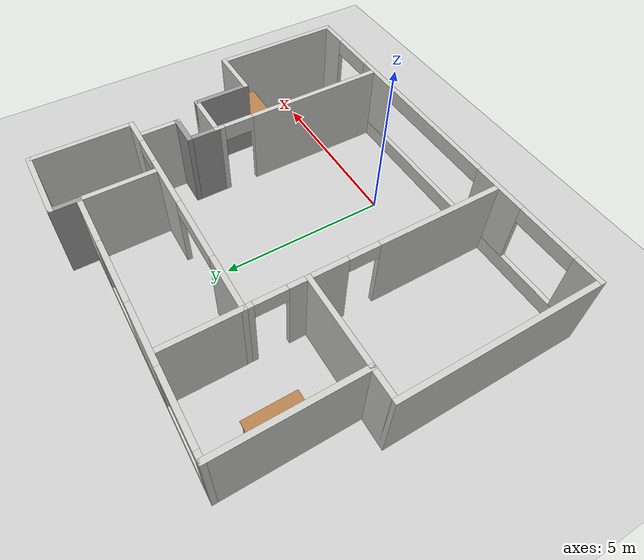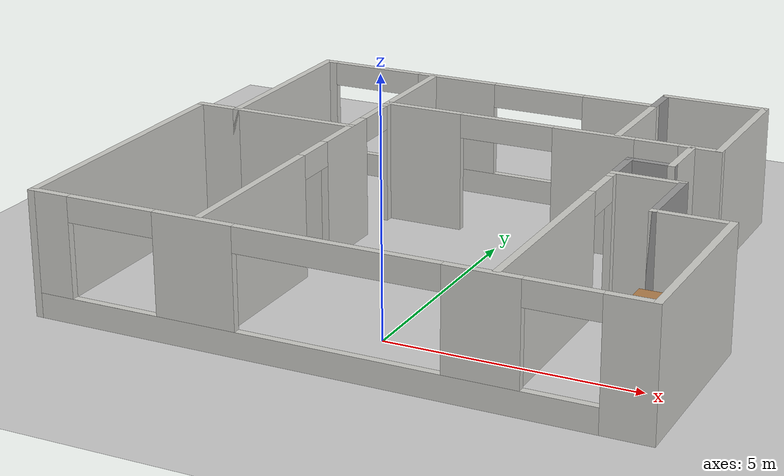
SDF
<sdf version="1.7">
 <world name="default">
  <light name="sun" type="directional">
   <pose>0 0 10 0 -0 0</pose>
   <diffuse>0.8 0.8 0.8 1</diffuse>
   <specular>0.2 0.2 0.2 1</specular>
   <attenuation>
    <range>1000</range>
    <constant>0.9</constant>
    <linear>0.01</linear>
    <quadratic>0.001</quadratic>
   </attenuation>
   <direction>-0.5 0.1 -0.9</direction>
   <spot><inner_angle>0</inner_angle><outer_angle>0</outer_angle><falloff>0</falloff></spot>
  </light>
  <model name="ground_plane">
   <static>1</static>
   <link name="link">
    <collision name="collision">
     <geometry><plane><normal>0 0 1</normal><size>100 100</size></plane></geometry>
     <surface><friction><ode><mu>100</mu><mu2>50</mu2></ode></friction></surface>
    </collision>
    <visual name="visual">
     <cast_shadows>0</cast_shadows>
     <geometry><plane><normal>0 0 1</normal><size>100 100</size></plane></geometry>
     <material>
      <script><uri>file://media/materials/scripts/gazebo.material</uri><name>Gazebo/Grey</name></script>
     </material>
    </visual>
   </link>
  </model>
  <gravity>0 0 -9.8</gravity>
  <magnetic_field>6e-06 2.3e-05 -4.2e-05</magnetic_field>
  <atmosphere type="adiabatic"/>
  <physics type="ode">
   <max_step_size>0.001</max_step_size>
   <real_time_factor>1</real_time_factor>
   <real_time_update_rate>1000</real_time_update_rate>
  </physics>
  <scene><ambient>0.4 0.4 0.4 1</ambient><background>0.7 0.7 0.7 1</background><shadows>1</shadows></scene>
  <spherical_coordinates>
   <surface_model>EARTH_WGS84</surface_model>
   <latitude_deg>0</latitude_deg>
   <longitude_deg>0</longitude_deg>
   <elevation>0</elevation>
   <heading_deg>0</heading_deg>
  </spherical_coordinates>
  <model name="Myhouse">
   <pose>-0.231915 3.48448 0 0 -0 0</pose>
   <link name="Wall_0">
    <pose>-1.32661 4.4683 0 0 -0 0</pose>
    <visual name="Wall_0_Visual_0">
     <pose>-3.71536 0 1.25 0 -0 0</pose>
     <geometry><box><size>0.319288 0.15 2.5</size></box></geometry>
     <material>
      <script><uri>file://media/materials/scripts/gazebo.material</uri><name>Gazebo/CeilingTiled</name></script>
      <ambient>1 1 1 1</ambient>
     </material>
     <meta><layer>0</layer></meta>
    </visual>
    <collision name="Wall_0_Collision_0">
     <geometry><box><size>0.319288 0.15 2.5</size></box></geometry>
     <pose>-3.71536 0 1.25 0 -0 0</pose>
    </collision>
    <visual name="Wall_0_Visual_1">
     <pose>0.159644 0 0.25 0 -0 0</pose>
     <geometry><box><size>7.43071 0.15 0.5</size></box></geometry>
     <material>
      <script><uri>file://media/materials/scripts/gazebo.material</uri><name>Gazebo/CeilingTiled</name></script>
      <ambient>1 1 1 1</ambient>
     </material>
     <meta><layer>0</layer></meta>
    </visual>
    <collision name="Wall_0_Collision_1">
     <geometry><box><size>7.43071 0.15 0.5</size></box></geometry>
     <pose>0.159644 0 0.25 0 -0 0</pose>
    </collision>
    <visual name="Wall_0_Visual_2">
     <pose>-0.655441 0 1.5 0 -0 0</pose>
     <geometry><box><size>1.80054 0.15 2</size></box></geometry>
     <material>
      <script><uri>file://media/materials/scripts/gazebo.material</uri><name>Gazebo/CeilingTiled</name></script>
      <ambient>1 1 1 1</ambient>
     </material>
     <meta><layer>0</layer></meta>
    </visual>
    <collision name="Wall_0_Collision_2">
     <geometry><box><size>1.80054 0.15 2</size></box></geometry>
     <pose>-0.655441 0 1.5 0 -0 0</pose>
    </collision>
    <visual name="Wall_0_Visual_3">
     <pose>3.05992 0 1.5 0 -0 0</pose>
     <geometry><box><size>1.63017 0.15 2</size></box></geometry>
     <material>
      <script><uri>file://media/materials/scripts/gazebo.material</uri><name>Gazebo/CeilingTiled</name></script>
      <ambient>1 1 1 1</ambient>
     </material>
     <meta><layer>0</layer></meta>
    </visual>
    <collision name="Wall_0_Collision_3">
     <geometry><box><size>1.63017 0.15 2</size></box></geometry>
     <pose>3.05992 0 1.5 0 -0 0</pose>
    </collision>
    <visual name="Wall_0_Visual_4">
     <pose>-2.55571 0 2.25 0 -0 0</pose>
     <geometry><box><size>2 0.15 0.5</size></box></geometry>
     <material>
      <script><uri>file://media/materials/scripts/gazebo.material</uri><name>Gazebo/CeilingTiled</name></script>
      <ambient>1 1 1 1</ambient>
     </material>
     <meta><layer>0</layer></meta>
    </visual>
    <collision name="Wall_0_Collision_4">
     <geometry><box><size>2 0.15 0.5</size></box></geometry>
     <pose>-2.55571 0 2.25 0 -0 0</pose>
    </collision>
    <visual name="Wall_0_Visual_5">
     <pose>1.24483 0 2.25 0 -0 0</pose>
     <geometry><box><size>2 0.15 0.5</size></box></geometry>
     <material>
      <script><uri>file://media/materials/scripts/gazebo.material</uri><name>Gazebo/CeilingTiled</name></script>
      <ambient>1 1 1 1</ambient>
     </material>
     <meta><layer>0</layer></meta>
    </visual>
    <collision name="Wall_0_Collision_5">
     <geometry><box><size>2 0.15 0.5</size></box></geometry>
     <pose>1.24483 0 2.25 0 -0 0</pose>
    </collision>
   </link>
   <link name="Wall_1">
    <collision name="Wall_1_Collision">
     <geometry><box><size>0.9 0.15 2.5</size></box></geometry>
     <pose>0 0 1.25 0 -0 0</pose>
    </collision>
    <visual name="Wall_1_Visual">
     <pose>0 0 1.25 0 -0 0</pose>
     <geometry><box><size>0.9 0.15 2.5</size></box></geometry>
     <material>
      <script><uri>file://media/materials/scripts/gazebo.material</uri><name>Gazebo/Grey</name></script>
      <ambient>1 1 1 1</ambient>
     </material>
     <meta><layer>0</layer></meta>
    </visual>
    <pose>2.47339 4.8433 0 0 -0 1.5708</pose>
   </link>
   <link name="Wall_10">
    <pose>1.02339 2.2683 0 0 -0 3.14159</pose>
    <visual name="Wall_10_Visual_0">
     <pose>-3.17845 0 1.25 0 -0 0</pose>
     <geometry><box><size>0.893093 0.15 2.5</size></box></geometry>
     <material>
      <script><uri>file://media/materials/scripts/gazebo.material</uri><name>Gazebo/CeilingTiled</name></script>
      <ambient>1 1 1 1</ambient>
     </material>
     <meta><layer>0</layer></meta>
    </visual>
    <collision name="Wall_10_Collision_0">
     <geometry><box><size>0.893093 0.15 2.5</size></box></geometry>
     <pose>-3.17845 0 1.25 0 -0 0</pose>
    </collision>
    <visual name="Wall_10_Visual_1">
     <pose>-0.973862 0 1.25 0 -0 0</pose>
     <geometry><box><size>1.71609 0.15 2.5</size></box></geometry>
     <material>
      <script><uri>file://media/materials/scripts/gazebo.material</uri><name>Gazebo/CeilingTiled</name></script>
      <ambient>1 1 1 1</ambient>
     </material>
     <meta><layer>0</layer></meta>
    </visual>
    <collision name="Wall_10_Collision_1">
     <geometry><box><size>1.71609 0.15 2.5</size></box></geometry>
     <pose>-0.973862 0 1.25 0 -0 0</pose>
    </collision>
    <visual name="Wall_10_Visual_2">
     <pose>2.75459 0 1.25 0 -0 0</pose>
     <geometry><box><size>1.74082 0.15 2.5</size></box></geometry>
     <material>
      <script><uri>file://media/materials/scripts/gazebo.material</uri><name>Gazebo/CeilingTiled</name></script>
      <ambient>1 1 1 1</ambient>
     </material>
     <meta><layer>0</layer></meta>
    </visual>
    <collision name="Wall_10_Collision_2">
     <geometry><box><size>1.74082 0.15 2.5</size></box></geometry>
     <pose>2.75459 0 1.25 0 -0 0</pose>
    </collision>
    <visual name="Wall_10_Visual_3">
     <pose>-2.28191 0 2.25 0 -0 0</pose>
     <geometry><box><size>0.9 0.15 0.5</size></box></geometry>
     <material>
      <script><uri>file://media/materials/scripts/gazebo.material</uri><name>Gazebo/CeilingTiled</name></script>
      <ambient>1 1 1 1</ambient>
     </material>
     <meta><layer>0</layer></meta>
    </visual>
    <collision name="Wall_10_Collision_3">
     <geometry><box><size>0.9 0.15 0.5</size></box></geometry>
     <pose>-2.28191 0 2.25 0 -0 0</pose>
    </collision>
    <visual name="Wall_10_Visual_4">
     <pose>0.884182 0 2.25 0 -0 0</pose>
     <geometry><box><size>2 0.15 0.5</size></box></geometry>
     <material>
      <script><uri>file://media/materials/scripts/gazebo.material</uri><name>Gazebo/CeilingTiled</name></script>
      <ambient>1 1 1 1</ambient>
     </material>
     <meta><layer>0</layer></meta>
    </visual>
    <collision name="Wall_10_Collision_4">
     <geometry><box><size>2 0.15 0.5</size></box></geometry>
     <pose>0.884182 0 2.25 0 -0 0</pose>
    </collision>
   </link>
   <link name="Wall_11">
    <collision name="Wall_11_Collision">
     <geometry><box><size>2.25 0.15 2.5</size></box></geometry>
     <pose>0 0 1.25 0 -0 0</pose>
    </collision>
    <visual name="Wall_11_Visual">
     <pose>0 0 1.25 0 -0 0</pose>
     <geometry><box><size>2.25 0.15 2.5</size></box></geometry>
     <material>
      <script><uri>file://media/materials/scripts/gazebo.material</uri><name>Gazebo/CeilingTiled</name></script>
      <ambient>1 1 1 1</ambient>
     </material>
     <meta><layer>0</layer></meta>
    </visual>
    <pose>-2.52661 3.3183 0 0 -0 1.5708</pose>
   </link>
   <link name="Wall_13">
    <collision name="Wall_13_Collision">
     <geometry><box><size>1.25 0.15 2.5</size></box></geometry>
     <pose>0 0 1.25 0 -0 0</pose>
    </collision>
    <visual name="Wall_13_Visual">
     <pose>0 0 1.25 0 -0 0</pose>
     <geometry><box><size>1.25 0.15 2.5</size></box></geometry>
     <material>
      <script><uri>file://media/materials/scripts/gazebo.material</uri><name>Gazebo/CeilingTiled</name></script>
      <ambient>1 1 1 1</ambient>
     </material>
     <meta><layer>0</layer></meta>
    </visual>
    <pose>4.02661 1.63186 0 0 -0 -1.5708</pose>
   </link>
   <link name="Wall_14">
    <collision name="Wall_14_Collision">
     <geometry><box><size>1 0.15 2.5</size></box></geometry>
     <pose>0 0 1.25 0 -0 0</pose>
    </collision>
    <visual name="Wall_14_Visual">
     <pose>0 0 1.25 0 -0 0</pose>
     <geometry><box><size>1 0.15 2.5</size></box></geometry>
     <material>
      <script><uri>file://media/materials/scripts/gazebo.material</uri><name>Gazebo/Grey</name></script>
      <ambient>1 1 1 1</ambient>
     </material>
     <meta><layer>0</layer></meta>
    </visual>
    <pose>3.60161 1.08186 0 0 -0 3.14159</pose>
   </link>
   <link name="Wall_15">
    <collision name="Wall_15_Collision">
     <geometry><box><size>1 0.15 2.5</size></box></geometry>
     <pose>0 0 1.25 0 -0 0</pose>
    </collision>
    <visual name="Wall_15_Visual">
     <pose>0 0 1.25 0 -0 0</pose>
     <geometry><box><size>1 0.15 2.5</size></box></geometry>
     <material>
      <script><uri>file://media/materials/scripts/gazebo.material</uri><name>Gazebo/Grey</name></script>
      <ambient>1 1 1 1</ambient>
     </material>
     <meta><layer>0</layer></meta>
    </visual>
    <pose>3.17661 0.656859 0 0 -0 -1.5708</pose>
   </link>
   <link name="Wall_16">
    <collision name="Wall_16_Collision">
     <geometry><box><size>1.5 0.15 2.5</size></box></geometry>
     <pose>0 0 1.25 0 -0 0</pose>
    </collision>
    <visual name="Wall_16_Visual">
     <pose>0 0 1.25 0 -0 0</pose>
     <geometry><box><size>1.5 0.15 2.5</size></box></geometry>
     <material>
      <script><uri>file://media/materials/scripts/gazebo.material</uri><name>Gazebo/CeilingTiled</name></script>
      <ambient>1 1 1 1</ambient>
     </material>
     <meta><layer>0</layer></meta>
    </visual>
    <pose>3.85161 0.231859 0 0 -0 0</pose>
   </link>
   <link name="Wall_19">
    <collision name="Wall_19_Collision">
     <geometry><box><size>1.75 0.15 2.5</size></box></geometry>
     <pose>0 0 1.25 0 -0 0</pose>
    </collision>
    <visual name="Wall_19_Visual">
     <pose>0 0 1.25 0 -0 0</pose>
     <geometry><box><size>1.75 0.15 2.5</size></box></geometry>
     <material>
      <script><uri>file://media/materials/scripts/gazebo.material</uri><name>Gazebo/Grey</name></script>
      <ambient>1 1 1 1</ambient>
     </material>
     <meta><layer>0</layer></meta>
    </visual>
    <pose>4.52661 -0.568141 0 0 -0 -1.5708</pose>
   </link>
   <link name="Wall_20">
    <collision name="Wall_20_Collision">
     <geometry><box><size>1.6 0.15 2.5</size></box></geometry>
     <pose>0 0 1.25 0 -0 0</pose>
    </collision>
    <visual name="Wall_20_Visual">
     <pose>0 0 1.25 0 -0 0</pose>
     <geometry><box><size>1.6 0.15 2.5</size></box></geometry>
     <material>
      <script><uri>file://media/materials/scripts/gazebo.material</uri><name>Gazebo/CeilingTiled</name></script>
      <ambient>1 1 1 1</ambient>
     </material>
     <meta><layer>0</layer></meta>
    </visual>
    <pose>5.25161 -1.36814 0 0 -0 0</pose>
   </link>
   <link name="Wall_22">
    <collision name="Wall_22_Collision">
     <geometry><box><size>4 0.15 2.5</size></box></geometry>
     <pose>0 0 1.25 0 -0 0</pose>
    </collision>
    <visual name="Wall_22_Visual">
     <pose>0 0 1.25 0 -0 0</pose>
     <geometry><box><size>4 0.15 2.5</size></box></geometry>
     <material>
      <script><uri>file://media/materials/scripts/gazebo.material</uri><name>Gazebo/CeilingTiled</name></script>
      <ambient>1 1 1 1</ambient>
     </material>
     <meta><layer>0</layer></meta>
    </visual>
    <pose>5.97657 -3.29322 0 0 -0 -1.57082</pose>
   </link>
   <link name="Wall_24">
    <pose>2.1e-05 -5.21829 0 0 -0 3.14159</pose>
    <visual name="Wall_24_Visual_0">
     <pose>-5.56066 0 1.25 0 -0 0</pose>
     <geometry><box><size>0.981677 0.15 2.5</size></box></geometry>
     <material>
      <script><uri>file://media/materials/scripts/gazebo.material</uri><name>Gazebo/CeilingTiled</name></script>
      <ambient>1 1 1 1</ambient>
     </material>
     <meta><layer>0</layer></meta>
    </visual>
    <collision name="Wall_24_Collision_0">
     <geometry><box><size>0.981677 0.15 2.5</size></box></geometry>
     <pose>-5.56066 0 1.25 0 -0 0</pose>
    </collision>
    <visual name="Wall_24_Visual_1">
     <pose>0.490838 0 0.25 0 -0 0</pose>
     <geometry><box><size>11.1213 0.15 0.5</size></box></geometry>
     <material>
      <script><uri>file://media/materials/scripts/gazebo.material</uri><name>Gazebo/CeilingTiled</name></script>
      <ambient>1 1 1 1</ambient>
     </material>
     <meta><layer>0</layer></meta>
    </visual>
    <collision name="Wall_24_Collision_1">
     <geometry><box><size>11.1213 0.15 0.5</size></box></geometry>
     <pose>0.490838 0 0.25 0 -0 0</pose>
    </collision>
    <visual name="Wall_24_Visual_2">
     <pose>-2.94837 0 1.5 0 -0 0</pose>
     <geometry><box><size>1.44291 0.15 2</size></box></geometry>
     <material>
      <script><uri>file://media/materials/scripts/gazebo.material</uri><name>Gazebo/CeilingTiled</name></script>
      <ambient>1 1 1 1</ambient>
     </material>
     <meta><layer>0</layer></meta>
    </visual>
    <collision name="Wall_24_Collision_2">
     <geometry><box><size>1.44291 0.15 2</size></box></geometry>
     <pose>-2.94837 0 1.5 0 -0 0</pose>
    </collision>
    <visual name="Wall_24_Visual_3">
     <pose>2.58532 0 1.5 0 -0 0</pose>
     <geometry><box><size>1.62446 0.15 2</size></box></geometry>
     <material>
      <script><uri>file://media/materials/scripts/gazebo.material</uri><name>Gazebo/CeilingTiled</name></script>
      <ambient>1 1 1 1</ambient>
     </material>
     <meta><layer>0</layer></meta>
    </visual>
    <collision name="Wall_24_Collision_3">
     <geometry><box><size>1.62446 0.15 2</size></box></geometry>
     <pose>2.58532 0 1.5 0 -0 0</pose>
    </collision>
    <visual name="Wall_24_Visual_4">
     <pose>5.62452 0 1.5 0 -0 0</pose>
     <geometry><box><size>0.853952 0.15 2</size></box></geometry>
     <material>
      <script><uri>file://media/materials/scripts/gazebo.material</uri><name>Gazebo/CeilingTiled</name></script>
      <ambient>1 1 1 1</ambient>
     </material>
     <meta><layer>0</layer></meta>
    </visual>
    <collision name="Wall_24_Collision_4">
     <geometry><box><size>0.853952 0.15 2</size></box></geometry>
     <pose>5.62452 0 1.5 0 -0 0</pose>
    </collision>
    <visual name="Wall_24_Visual_5">
     <pose>4.29755 0 0.50025 0 -0 0</pose>
     <geometry><box><size>1.8 0.15 0.0005</size></box></geometry>
     <material>
      <script><uri>file://media/materials/scripts/gazebo.material</uri><name>Gazebo/CeilingTiled</name></script>
      <ambient>1 1 1 1</ambient>
     </material>
     <meta><layer>0</layer></meta>
    </visual>
    <collision name="Wall_24_Collision_5">
     <geometry><box><size>1.8 0.15 0.0005</size></box></geometry>
     <pose>4.29755 0 0.50025 0 -0 0</pose>
    </collision>
    <visual name="Wall_24_Visual_6">
     <pose>-4.36982 0 2.25 0 -0 0</pose>
     <geometry><box><size>1.4 0.15 0.5</size></box></geometry>
     <material>
      <script><uri>file://media/materials/scripts/gazebo.material</uri><name>Gazebo/CeilingTiled</name></script>
      <ambient>1 1 1 1</ambient>
     </material>
     <meta><layer>0</layer></meta>
    </visual>
    <collision name="Wall_24_Collision_6">
     <geometry><box><size>1.4 0.15 0.5</size></box></geometry>
     <pose>-4.36982 0 2.25 0 -0 0</pose>
    </collision>
    <visual name="Wall_24_Visual_7">
     <pose>-0.226915 0 2.25 0 -0 0</pose>
     <geometry><box><size>4 0.15 0.5</size></box></geometry>
     <material>
      <script><uri>file://media/materials/scripts/gazebo.material</uri><name>Gazebo/CeilingTiled</name></script>
      <ambient>1 1 1 1</ambient>
     </material>
     <meta><layer>0</layer></meta>
    </visual>
    <collision name="Wall_24_Collision_7">
     <geometry><box><size>4 0.15 0.5</size></box></geometry>
     <pose>-0.226915 0 2.25 0 -0 0</pose>
    </collision>
    <visual name="Wall_24_Visual_8">
     <pose>4.29755 0 2.25025 0 -0 0</pose>
     <geometry><box><size>1.8 0.15 0.4995</size></box></geometry>
     <material>
      <script><uri>file://media/materials/scripts/gazebo.material</uri><name>Gazebo/CeilingTiled</name></script>
      <ambient>1 1 1 1</ambient>
     </material>
     <meta><layer>0</layer></meta>
    </visual>
    <collision name="Wall_24_Collision_8">
     <geometry><box><size>1.8 0.15 0.4995</size></box></geometry>
     <pose>4.29755 0 2.25025 0 -0 0</pose>
    </collision>
   </link>
   <link name="Wall_26">
    <collision name="Wall_26_Collision">
     <geometry><box><size>5.93659 0.15 2.5</size></box></geometry>
     <pose>0 0 1.25 0 -0 0</pose>
    </collision>
    <visual name="Wall_26_Visual">
     <pose>0 0 1.25 0 -0 0</pose>
     <geometry><box><size>5.93659 0.15 2.5</size></box></geometry>
     <material>
      <script><uri>file://media/materials/scripts/gazebo.material</uri><name>Gazebo/CeilingTiled</name></script>
      <ambient>1 1 1 1</ambient>
     </material>
     <meta><layer>0</layer></meta>
    </visual>
    <pose>-5.97655 -2.325 0 0 -0 1.57082</pose>
   </link>
   <link name="Wall_29">
    <pose>-2.52661 -1.4067 0 0 -0 -1.5708</pose>
    <visual name="Wall_29_Visual_0">
     <pose>-3.5933 0 1.25 0 -0 0</pose>
     <geometry><box><size>0.3134 0.15 2.5</size></box></geometry>
     <material>
      <script><uri>file://media/materials/scripts/gazebo.material</uri><name>Gazebo/CeilingTiled</name></script>
      <ambient>1 1 1 1</ambient>
     </material>
     <meta><layer>0</layer></meta>
    </visual>
    <collision name="Wall_29_Collision_0">
     <geometry><box><size>0.3134 0.15 2.5</size></box></geometry>
     <pose>-3.5933 0 1.25 0 -0 0</pose>
    </collision>
    <visual name="Wall_29_Visual_1">
     <pose>-1.70626 0 1.25 0 -0 0</pose>
     <geometry><box><size>1.66067 0.15 2.5</size></box></geometry>
     <material>
      <script><uri>file://media/materials/scripts/gazebo.material</uri><name>Gazebo/CeilingTiled</name></script>
      <ambient>1 1 1 1</ambient>
     </material>
     <meta><layer>0</layer></meta>
    </visual>
    <collision name="Wall_29_Collision_1">
     <geometry><box><size>1.66067 0.15 2.5</size></box></geometry>
     <pose>-1.70626 0 1.25 0 -0 0</pose>
    </collision>
    <visual name="Wall_29_Visual_2">
     <pose>1.88704 0 1.25 0 -0 0</pose>
     <geometry><box><size>3.72593 0.15 2.5</size></box></geometry>
     <material>
      <script><uri>file://media/materials/scripts/gazebo.material</uri><name>Gazebo/CeilingTiled</name></script>
      <ambient>1 1 1 1</ambient>
     </material>
     <meta><layer>0</layer></meta>
    </visual>
    <collision name="Wall_29_Collision_2">
     <geometry><box><size>3.72593 0.15 2.5</size></box></geometry>
     <pose>1.88704 0 1.25 0 -0 0</pose>
    </collision>
    <visual name="Wall_29_Visual_3">
     <pose>-2.9866 0 2.25 0 -0 0</pose>
     <geometry><box><size>0.9 0.15 0.5</size></box></geometry>
     <material>
      <script><uri>file://media/materials/scripts/gazebo.material</uri><name>Gazebo/CeilingTiled</name></script>
      <ambient>1 1 1 1</ambient>
     </material>
     <meta><layer>0</layer></meta>
    </visual>
    <collision name="Wall_29_Collision_3">
     <geometry><box><size>0.9 0.15 0.5</size></box></geometry>
     <pose>-2.9866 0 2.25 0 -0 0</pose>
    </collision>
    <visual name="Wall_29_Visual_4">
     <pose>-0.425927 0 2.25 0 -0 0</pose>
     <geometry><box><size>0.9 0.15 0.5</size></box></geometry>
     <material>
      <script><uri>file://media/materials/scripts/gazebo.material</uri><name>Gazebo/CeilingTiled</name></script>
      <ambient>1 1 1 1</ambient>
     </material>
     <meta><layer>0</layer></meta>
    </visual>
    <collision name="Wall_29_Collision_4">
     <geometry><box><size>0.9 0.15 0.5</size></box></geometry>
     <pose>-0.425927 0 2.25 0 -0 0</pose>
    </collision>
   </link>
   <link name="Wall_3">
    <collision name="Wall_3_Collision">
     <geometry><box><size>2.25 0.15 2.5</size></box></geometry>
     <pose>0 0 1.25 0 -0 0</pose>
    </collision>
    <visual name="Wall_3_Visual">
     <pose>0 0 1.25 0 -0 0</pose>
     <geometry><box><size>2.25 0.15 2.5</size></box></geometry>
     <material>
      <script><uri>file://media/materials/scripts/gazebo.material</uri><name>Gazebo/CeilingTiled</name></script>
      <ambient>1 1 1 1</ambient>
     </material>
     <meta><layer>0</layer></meta>
    </visual>
    <pose>3.52339 5.2183 0 0 -0 0</pose>
   </link>
   <link name="Wall_31">
    <pose>3.17661 -2.44314 0 0 -0 -1.5708</pose>
    <visual name="Wall_31_Visual_0">
     <pose>-2.59448 0 1.25 0 -0 0</pose>
     <geometry><box><size>0.311042 0.15 2.5</size></box></geometry>
     <material>
      <script><uri>file://media/materials/scripts/gazebo.material</uri><name>Gazebo/CeilingTiled</name></script>
      <ambient>1 1 1 1</ambient>
     </material>
     <meta><layer>0</layer></meta>
    </visual>
    <collision name="Wall_31_Collision_0">
     <geometry><box><size>0.311042 0.15 2.5</size></box></geometry>
     <pose>-2.59448 0 1.25 0 -0 0</pose>
    </collision>
    <visual name="Wall_31_Visual_1">
     <pose>0.605521 0 1.25 0 -0 0</pose>
     <geometry><box><size>4.28896 0.15 2.5</size></box></geometry>
     <material>
      <script><uri>file://media/materials/scripts/gazebo.material</uri><name>Gazebo/CeilingTiled</name></script>
      <ambient>1 1 1 1</ambient>
     </material>
     <meta><layer>0</layer></meta>
    </visual>
    <collision name="Wall_31_Collision_1">
     <geometry><box><size>4.28896 0.15 2.5</size></box></geometry>
     <pose>0.605521 0 1.25 0 -0 0</pose>
    </collision>
    <visual name="Wall_31_Visual_2">
     <pose>-1.98896 0 2.25 0 -0 0</pose>
     <geometry><box><size>0.9 0.15 0.5</size></box></geometry>
     <material>
      <script><uri>file://media/materials/scripts/gazebo.material</uri><name>Gazebo/CeilingTiled</name></script>
      <ambient>1 1 1 1</ambient>
     </material>
     <meta><layer>0</layer></meta>
    </visual>
    <collision name="Wall_31_Collision_2">
     <geometry><box><size>0.9 0.15 0.5</size></box></geometry>
     <pose>-1.98896 0 2.25 0 -0 0</pose>
    </collision>
   </link>
   <link name="Wall_33">
    <collision name="Wall_33_Collision">
     <geometry><box><size>2.75 0.15 2.5</size></box></geometry>
     <pose>0 0 1.25 0 -0 0</pose>
    </collision>
    <visual name="Wall_33_Visual">
     <pose>0 0 1.25 0 -0 0</pose>
     <geometry><box><size>2.75 0.15 2.5</size></box></geometry>
     <material>
      <script><uri>file://media/materials/scripts/gazebo.material</uri><name>Gazebo/CeilingTiled</name></script>
      <ambient>1 1 1 1</ambient>
     </material>
     <meta><layer>0</layer></meta>
    </visual>
    <pose>-3.82661 0.568296 0 0 -0 0</pose>
   </link>
   <link name="Wall_35">
    <collision name="Wall_35_Collision">
     <geometry><box><size>2.25 0.15 2.5</size></box></geometry>
     <pose>0 0 1.25 0 -0 0</pose>
    </collision>
    <visual name="Wall_35_Visual">
     <pose>0 0 1.25 0 -0 0</pose>
     <geometry><box><size>2.25 0.15 2.5</size></box></geometry>
     <material>
      <script><uri>file://media/materials/scripts/gazebo.material</uri><name>Gazebo/CeilingTiled</name></script>
      <ambient>1 1 1 1</ambient>
     </material>
     <meta><layer>0</layer></meta>
    </visual>
    <pose>2.47339 3.4183 0 0 -0 -1.5708</pose>
   </link>
   <link name="Wall_4">
    <collision name="Wall_4_Collision">
     <geometry><box><size>3.1 0.15 2.5</size></box></geometry>
     <pose>0 0 1.25 0 -0 0</pose>
    </collision>
    <visual name="Wall_4_Visual">
     <pose>0 0 1.25 0 -0 0</pose>
     <geometry><box><size>3.1 0.15 2.5</size></box></geometry>
     <material>
      <script><uri>file://media/materials/scripts/gazebo.material</uri><name>Gazebo/CeilingTiled</name></script>
      <ambient>1 1 1 1</ambient>
     </material>
     <meta><layer>0</layer></meta>
    </visual>
    <pose>4.57339 3.7433 0 0 -0 -1.5708</pose>
   </link>
   <link name="Wall_6">
    <collision name="Wall_6_Collision">
     <geometry><box><size>4.05 0.15 2.5</size></box></geometry>
     <pose>0 0 1.25 0 -0 0</pose>
    </collision>
    <visual name="Wall_6_Visual">
     <pose>0 0 1.25 0 -0 0</pose>
     <geometry><box><size>4.05 0.15 2.5</size></box></geometry>
     <material>
      <script><uri>file://media/materials/scripts/gazebo.material</uri><name>Gazebo/CeilingTiled</name></script>
      <ambient>1 1 1 1</ambient>
     </material>
     <meta><layer>0</layer></meta>
    </visual>
    <pose>-5.12661 2.5183 0 0 -0 -1.5708</pose>
   </link>
   <link name="Wall_8">
    <collision name="Wall_8_Collision">
     <geometry><box><size>1 0.15 2.5</size></box></geometry>
     <pose>0 0 1.25 0 -0 0</pose>
    </collision>
    <visual name="Wall_8_Visual">
     <pose>0 0 1.25 0 -0 0</pose>
     <geometry><box><size>1 0.15 2.5</size></box></geometry>
     <material>
      <script><uri>file://media/materials/scripts/gazebo.material</uri><name>Gazebo/CeilingTiled</name></script>
      <ambient>1 1 1 1</ambient>
     </material>
     <meta><layer>0</layer></meta>
    </visual>
    <pose>-5.55161 0.568296 0 0 -0 3.14159</pose>
   </link>
   <static>1</static>
  </model>
  <model name="table">
   <static>1</static>
   <link name="link">
    <collision name="surface">
     <pose>0 0 1 0 -0 0</pose>
     <geometry><box><size>1.5 0.8 0.03</size></box></geometry>
     <surface><friction><ode><mu>0.6</mu><mu2>0.6</mu2></ode></friction></surface>
    </collision>
    <visual name="visual1">
     <pose>0 0 1 0 -0 0</pose>
     <geometry><box><size>1.5 0.8 0.03</size></box></geometry>
     <material>
      <script><uri>file://media/materials/scripts/gazebo.material</uri><name>Gazebo/Wood</name></script>
     </material>
    </visual>
    <collision name="front_left_leg">
     <pose>0.68 0.38 0.5 0 -0 0</pose>
     <geometry><cylinder><radius>0.02</radius><length>1</length></cylinder></geometry>
    </collision>
    <visual name="front_left_leg">
     <pose>0.68 0.38 0.5 0 -0 0</pose>
     <geometry><cylinder><radius>0.02</radius><length>1</length></cylinder></geometry>
     <material>
      <script><uri>file://media/materials/scripts/gazebo.material</uri><name>Gazebo/Grey</name></script>
     </material>
    </visual>
    <collision name="front_right_leg">
     <pose>0.68 -0.38 0.5 0 -0 0</pose>
     <geometry><cylinder><radius>0.02</radius><length>1</length></cylinder></geometry>
    </collision>
    <visual name="front_right_leg">
     <pose>0.68 -0.38 0.5 0 -0 0</pose>
     <geometry><cylinder><radius>0.02</radius><length>1</length></cylinder></geometry>
     <material>
      <script><uri>file://media/materials/scripts/gazebo.material</uri><name>Gazebo/Grey</name></script>
     </material>
    </visual>
    <collision name="back_right_leg">
     <pose>-0.68 -0.38 0.5 0 -0 0</pose>
     <geometry><cylinder><radius>0.02</radius><length>1</length></cylinder></geometry>
    </collision>
    <visual name="back_right_leg">
     <pose>-0.68 -0.38 0.5 0 -0 0</pose>
     <geometry><cylinder><radius>0.02</radius><length>1</length></cylinder></geometry>
     <material>
      <script><uri>file://media/materials/scripts/gazebo.material</uri><name>Gazebo/Grey</name></script>
     </material>
    </visual>
    <collision name="back_left_leg">
     <pose>-0.68 0.38 0.5 0 -0 0</pose>
     <geometry><cylinder><radius>0.02</radius><length>1</length></cylinder></geometry>
    </collision>
    <visual name="back_left_leg">
     <pose>-0.68 0.38 0.5 0 -0 0</pose>
     <geometry><cylinder><radius>0.02</radius><length>1</length></cylinder></geometry>
     <material>
      <script><uri>file://media/materials/scripts/gazebo.material</uri><name>Gazebo/Grey</name></script>
     </material>
    </visual>
   </link>
   <pose>4.86868 1.61692 0 0 -0 0</pose>
  </model>
  <model name="table_0">
   <static>1</static>
   <link name="link">
    <collision name="surface">
     <pose>0 0 1 0 -0 0</pose>
     <geometry><box><size>1.5 0.8 0.03</size></box></geometry>
     <surface><friction><ode><mu>0.6</mu><mu2>0.6</mu2></ode></friction></surface>
    </collision>
    <visual name="visual1">
     <pose>0 0 1 0 -0 0</pose>
     <geometry><box><size>1.5 0.8 0.03</size></box></geometry>
     <material>
      <script><uri>file://media/materials/scripts/gazebo.material</uri><name>Gazebo/Wood</name></script>
     </material>
    </visual>
    <collision name="front_left_leg">
     <pose>0.68 0.38 0.5 0 -0 0</pose>
     <geometry><cylinder><radius>0.02</radius><length>1</length></cylinder></geometry>
    </collision>
    <visual name="front_left_leg">
     <pose>0.68 0.38 0.5 0 -0 0</pose>
     <geometry><cylinder><radius>0.02</radius><length>1</length></cylinder></geometry>
     <material>
      <script><uri>file://media/materials/scripts/gazebo.material</uri><name>Gazebo/Grey</name></script>
     </material>
    </visual>
    <collision name="front_right_leg">
     <pose>0.68 -0.38 0.5 0 -0 0</pose>
     <geometry><cylinder><radius>0.02</radius><length>1</length></cylinder></geometry>
    </collision>
    <visual name="front_right_leg">
     <pose>0.68 -0.38 0.5 0 -0 0</pose>
     <geometry><cylinder><radius>0.02</radius><length>1</length></cylinder></geometry>
     <material>
      <script><uri>file://media/materials/scripts/gazebo.material</uri><name>Gazebo/Grey</name></script>
     </material>
    </visual>
    <collision name="back_right_leg">
     <pose>-0.68 -0.38 0.5 0 -0 0</pose>
     <geometry><cylinder><radius>0.02</radius><length>1</length></cylinder></geometry>
    </collision>
    <visual name="back_right_leg">
     <pose>-0.68 -0.38 0.5 0 -0 0</pose>
     <geometry><cylinder><radius>0.02</radius><length>1</length></cylinder></geometry>
     <material>
      <script><uri>file://media/materials/scripts/gazebo.material</uri><name>Gazebo/Grey</name></script>
     </material>
    </visual>
    <collision name="back_left_leg">
     <pose>-0.68 0.38 0.5 0 -0 0</pose>
     <geometry><cylinder><radius>0.02</radius><length>1</length></cylinder></geometry>
    </collision>
    <visual name="back_left_leg">
     <pose>-0.68 0.38 0.5 0 -0 0</pose>
     <geometry><cylinder><radius>0.02</radius><length>1</length></cylinder></geometry>
     <material>
      <script><uri>file://media/materials/scripts/gazebo.material</uri><name>Gazebo/Grey</name></script>
     </material>
    </visual>
   </link>
   <pose>-4.8393 6.04419 0 0 -0 1.57255</pose>
  </model>
 </world>
</sdf>
